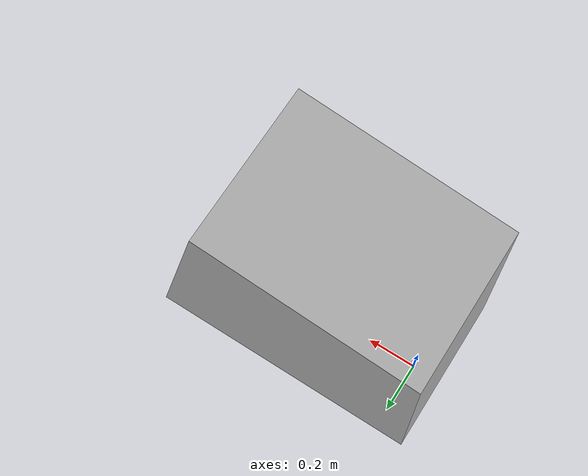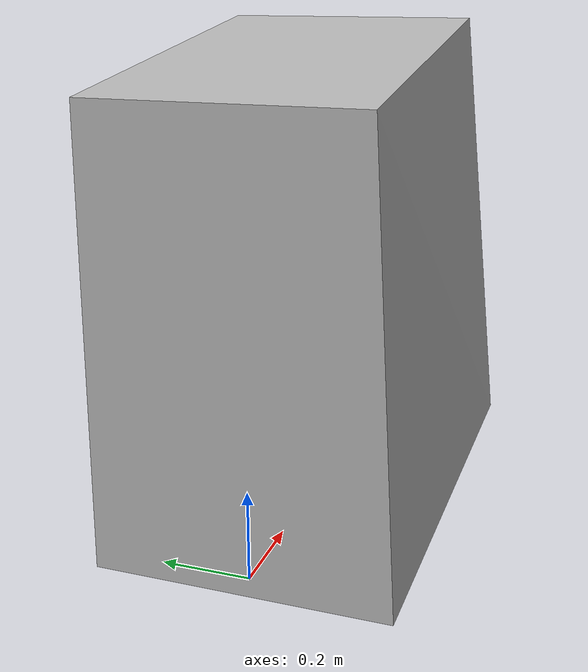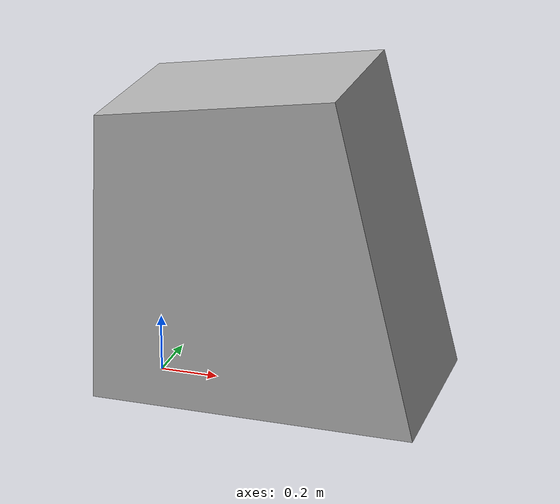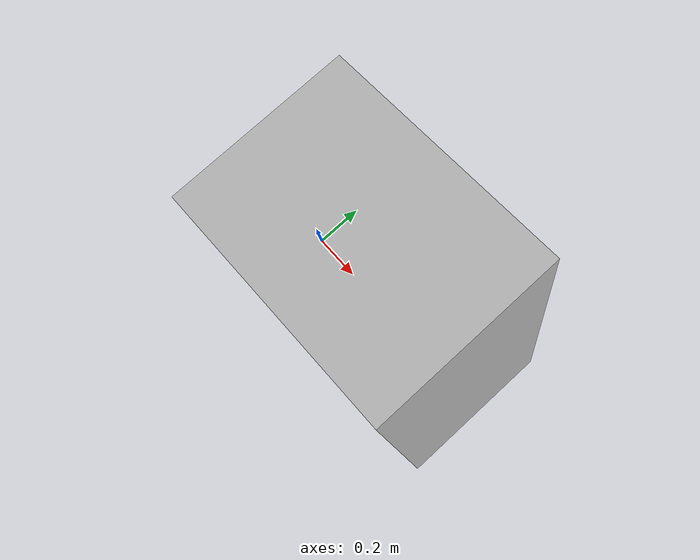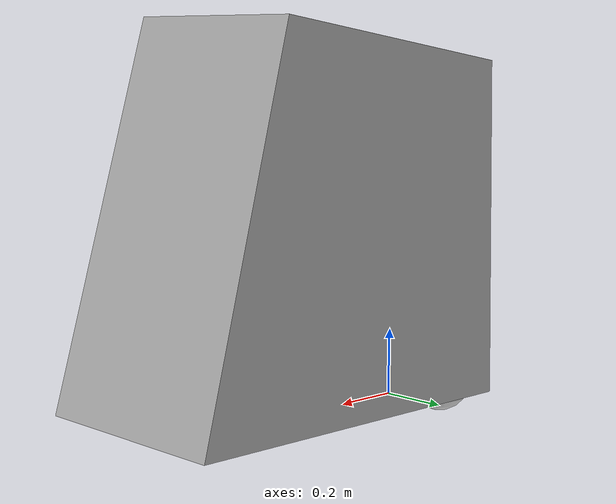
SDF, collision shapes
<?xml version='1.0' encoding='utf-8'?>
<sdf version="1.6">
  <model name="CleanerBot2">

    <!-- TODO: Find actual physical properties for Avidbot instead of duplicating -->
    <!-- Note: rotational axis of the robot should located at the origin  -->

    <plugin name="slotcar" filename="libslotcar.so">

      <!-- Forward / Backward -->
      <nominal_drive_speed>0.7</nominal_drive_speed>
      <nominal_drive_acceleration>0.5</nominal_drive_acceleration>
      <max_drive_acceleration>0.6</max_drive_acceleration>

      <!-- Turning -->
      <nominal_turn_speed>0.4</nominal_turn_speed>
      <nominal_turn_acceleration>1.0</nominal_turn_acceleration>
      <max_turn_acceleration>1.2</max_turn_acceleration>

      <!-- Stop distance and radius  -->
      <stop_distance>1.5</stop_distance>
      <stop_radius>1.5</stop_radius>

      <!-- Battery params -->
      <nominal_voltage>24.0</nominal_voltage>
      <nominal_capacity>30.0</nominal_capacity>
      <charging_current>10.0</charging_current>

      <!-- Physical params -->
      <mass>70.0</mass>
      <inertia>40.0</inertia>
      <friction_coefficient>0.22</friction_coefficient>

      <!-- Power systems -->
      <nominal_power>100.0</nominal_power>
    </plugin>

    <!-- Main CleanerBot2 Body -->

    <link name="body">
      <pose>0 0 0 0 0 0</pose>

      <inertial>
        <pose>0.36 0 0.43294142 0 0 0</pose>
        <mass>10.0</mass> <!-- Mass reduced to prevent model rolling when stationary -->
        <inertia>
          <ixx>2.441</ixx>
          <iyy>3.2373</iyy>
          <izz>2.332</izz>
        </inertia>
      </inertial>

      <visual name="visual">
        <pose>0.35 0 0 0 0 0</pose>
        <geometry>
          <mesh>
            <uri>model://CleanerBot2/meshes/CleanerBot2.obj</uri>
          </mesh>
        </geometry>
      </visual>
      <collision name="body_collision">
        <pose>0.35 0 0.04 0 0 0</pose>
        <geometry>
          <mesh>
            <uri>model://CleanerBot2/meshes/CleanerBot2_Col.obj</uri>
          </mesh>
        </geometry>
      </collision>

      <collision name="front_virtual_wheel_collision">
        <pose>0.7 0.0 0.09 0 0 0</pose>
        <geometry>
          <sphere>
            <radius>0.1</radius>
          </sphere>
        </geometry>
        <surface>
          <contact>
            <ode>
              <kp>1e+08</kp>
              <min_depth>0.005</min_depth>
            </ode>
          </contact>
          <friction>
            <ode>
              <mu>0</mu>
              <mu2>0</mu2>
            </ode>
          </friction>
        </surface>
      </collision>
    </link>

    <!-- Left wheel link and revolute joint -->

    <link name="tire_left">
      <pose>0 0.20 0.08 0 0 0</pose>

      <inertial>
        <pose>0 0 0 0 0 0</pose>
        <mass>3.0</mass>
        <inertia>
          <ixx>0.757897446874</ixx>
          <iyy>1.302975553365</iyy>
          <izz>0.757897446874</izz>
        </inertia>
      </inertial>

      <visual name="tire_left">
        <geometry>
          <mesh>
            <uri>model://CleanerBot2/meshes/CleanerBot2_Wheel.obj</uri>
          </mesh>
        </geometry>
      </visual>

      <collision name='tire_left_collision'>
        <geometry>
          <sphere>
            <radius>0.09</radius>
          </sphere>
        </geometry>
        <surface>
          <contact>
            <ode>
              <kp>10000000.0</kp>
              <kd>1.0</kd>
            </ode>
          </contact>
        </surface>
      </collision>
    </link>

    <joint name="joint_tire_left" type="revolute">
      <parent>body</parent>
      <child>tire_left</child>
      <axis>
        <xyz>0 1 0</xyz>
      </axis>
    </joint>

    <!-- Right wheel link and revolute joint -->

    <link name="tire_right">
      <pose>0 -0.20 0.08 0 0 0</pose>
      <inertial>
        <pose>0 0 0 0 0 0</pose>
        <mass>3.0</mass>
        <inertia>
          <ixx>0.657897446874</ixx>
          <iyy>1.102975553365</iyy>
          <izz>0.657897446874</izz>
        </inertia>
      </inertial>

      <visual name="tire_right">
        <geometry>
          <mesh>
            <uri>model://CleanerBot2/meshes/CleanerBot2_Wheel.obj</uri>
          </mesh>
        </geometry>
      </visual>

      <collision name='tire_right_collision'>
        <geometry>
          <sphere>
            <radius>0.09</radius>
          </sphere>
        </geometry>
        <surface>
          <contact>
            <ode>
              <kp>10000000.0</kp>
              <kd>1.0</kd>
            </ode>
          </contact>
        </surface>
      </collision>
    </link>

    <joint name="joint_tire_right" type="revolute">
      <parent>body</parent>
      <child>tire_right</child>
      <axis>
        <xyz>0 1 0</xyz>
      </axis>
    </joint>

  </model>
</sdf>
